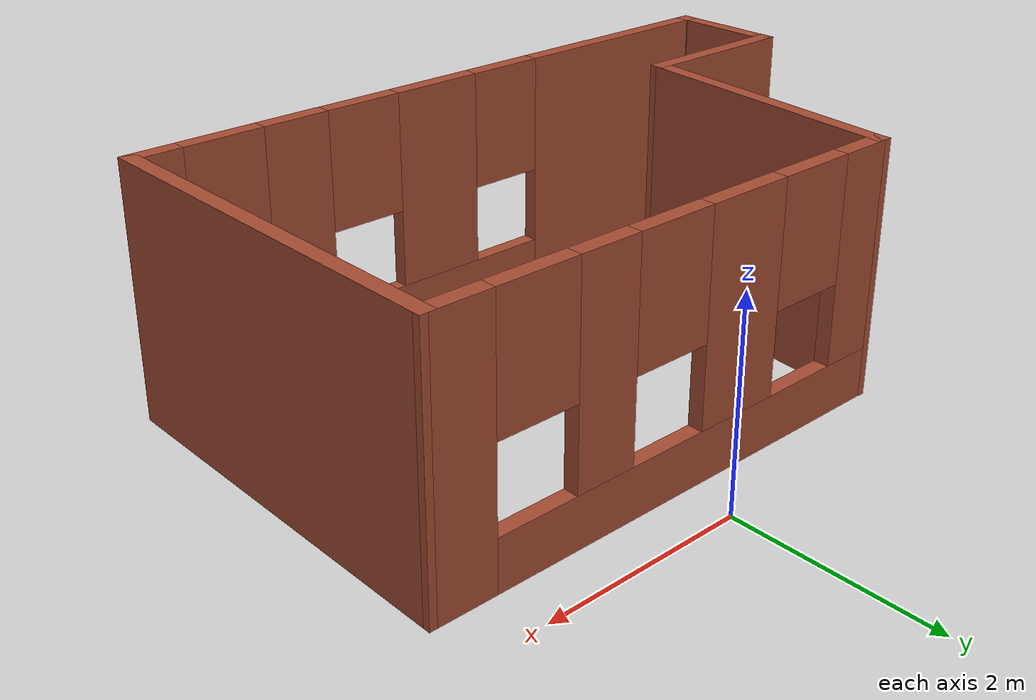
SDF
<?xml version='1.0'?>
<sdf version='1.7'>
  <model name='BrickBuilding'>
    <pose>-0.814927 -2.2475 0 0 -0 0</pose>
    <link name='Wall_0'>
      <collision name='Wall_0_Collision'>
        <geometry>
          <box>
            <size>1.75 0.15 2.5</size>
          </box>
        </geometry>
        <pose>0 0 1.25 0 -0 0</pose>
      </collision>
      <visual name='Wall_0_Visual'>
        <pose>0 0 1.25 0 -0 0</pose>
        <geometry>
          <box>
            <size>1.75 0.15 2.5</size>
          </box>
        </geometry>
        <material>
          <script>
            <uri>file://media/materials/scripts/gazebo.material</uri>
            <name>Gazebo/Bricks</name>
          </script>
          <ambient>1 1 1 1</ambient>
        </material>
        <meta>
          <layer>0</layer>
        </meta>
      </visual>
      <pose>-2.62507 -1.0725 0 0 -0 3.14159</pose>
    </link>
    <link name='Wall_1'>
      <pose>-3.42507 -1.6225 0 0 -0 -1.5708</pose>
      <visual name='Wall_1_Visual_0'>
        <pose>-0.5325 0 1.25 0 -0 0</pose>
        <geometry>
          <box>
            <size>0.185 0.15 2.5</size>
          </box>
        </geometry>
        <material>
          <script>
            <uri>file://media/materials/scripts/gazebo.material</uri>
            <name>Gazebo/Bricks</name>
          </script>
          <ambient>1 1 1 1</ambient>
        </material>
        <meta>
          <layer>0</layer>
        </meta>
      </visual>
      <collision name='Wall_1_Collision_0'>
        <geometry>
          <box>
            <size>0.185 0.15 2.5</size>
          </box>
        </geometry>
        <pose>-0.5325 0 1.25 0 -0 0</pose>
      </collision>
      <visual name='Wall_1_Visual_1'>
        <pose>0.5425 0 1.25 0 -0 0</pose>
        <geometry>
          <box>
            <size>0.165 0.15 2.5</size>
          </box>
        </geometry>
        <material>
          <script>
            <uri>file://media/materials/scripts/gazebo.material</uri>
            <name>Gazebo/Bricks</name>
          </script>
          <ambient>1 1 1 1</ambient>
        </material>
        <meta>
          <layer>0</layer>
        </meta>
      </visual>
      <collision name='Wall_1_Collision_1'>
        <geometry>
          <box>
            <size>0.165 0.15 2.5</size>
          </box>
        </geometry>
        <pose>0.5425 0 1.25 0 -0 0</pose>
      </collision>
      <visual name='Wall_1_Visual_2'>
        <pose>0.01 0 2.25 0 -0 0</pose>
        <geometry>
          <box>
            <size>0.9 0.15 0.5</size>
          </box>
        </geometry>
        <material>
          <script>
            <uri>file://media/materials/scripts/gazebo.material</uri>
            <name>Gazebo/Bricks</name>
          </script>
          <ambient>1 1 1 1</ambient>
        </material>
        <meta>
          <layer>0</layer>
        </meta>
      </visual>
      <collision name='Wall_1_Collision_2'>
        <geometry>
          <box>
            <size>0.9 0.15 0.5</size>
          </box>
        </geometry>
        <pose>0.01 0 2.25 0 -0 0</pose>
      </collision>
    </link>
    <link name='Wall_2'>
      <pose>-7.3e-05 -2.1725 0 0 -0 0</pose>
      <visual name='Wall_2_Visual_0'>
        <pose>-2.2775 0 1.25 0 -0 0</pose>
        <geometry>
          <box>
            <size>2.445 0.15 2.5</size>
          </box>
        </geometry>
        <material>
          <script>
            <uri>file://media/materials/scripts/gazebo.material</uri>
            <name>Gazebo/Bricks</name>
          </script>
          <ambient>1 1 1 1</ambient>
        </material>
        <meta>
          <layer>0</layer>
        </meta>
      </visual>
      <collision name='Wall_2_Collision_0'>
        <geometry>
          <box>
            <size>2.445 0.15 2.5</size>
          </box>
        </geometry>
        <pose>-2.2775 0 1.25 0 -0 0</pose>
      </collision>
      <visual name='Wall_2_Visual_1'>
        <pose>1.2225 0 0.25 0 -0 0</pose>
        <geometry>
          <box>
            <size>4.555 0.15 0.5</size>
          </box>
        </geometry>
        <material>
          <script>
            <uri>file://media/materials/scripts/gazebo.material</uri>
            <name>Gazebo/Bricks</name>
          </script>
          <ambient>1 1 1 1</ambient>
        </material>
        <meta>
          <layer>0</layer>
        </meta>
      </visual>
      <collision name='Wall_2_Collision_1'>
        <geometry>
          <box>
            <size>4.555 0.15 0.5</size>
          </box>
        </geometry>
        <pose>1.2225 0 0.25 0 -0 0</pose>
      </collision>
      <visual name='Wall_2_Visual_2'>
        <pose>0.22 0 1.5 0 -0 0</pose>
        <geometry>
          <box>
            <size>0.95 0.15 2</size>
          </box>
        </geometry>
        <material>
          <script>
            <uri>file://media/materials/scripts/gazebo.material</uri>
            <name>Gazebo/Bricks</name>
          </script>
          <ambient>1 1 1 1</ambient>
        </material>
        <meta>
          <layer>0</layer>
        </meta>
      </visual>
      <collision name='Wall_2_Collision_2'>
        <geometry>
          <box>
            <size>0.95 0.15 2</size>
          </box>
        </geometry>
        <pose>0.22 0 1.5 0 -0 0</pose>
      </collision>
      <visual name='Wall_2_Visual_3'>
        <pose>1.835 0 1.5 0 -0 0</pose>
        <geometry>
          <box>
            <size>0.68 0.15 2</size>
          </box>
        </geometry>
        <material>
          <script>
            <uri>file://media/materials/scripts/gazebo.material</uri>
            <name>Gazebo/Bricks</name>
          </script>
          <ambient>1 1 1 1</ambient>
        </material>
        <meta>
          <layer>0</layer>
        </meta>
      </visual>
      <collision name='Wall_2_Collision_3'>
        <geometry>
          <box>
            <size>0.68 0.15 2</size>
          </box>
        </geometry>
        <pose>1.835 0 1.5 0 -0 0</pose>
      </collision>
      <visual name='Wall_2_Visual_4'>
        <pose>3.2375 0 1.5 0 -0 0</pose>
        <geometry>
          <box>
            <size>0.525 0.15 2</size>
          </box>
        </geometry>
        <material>
          <script>
            <uri>file://media/materials/scripts/gazebo.material</uri>
            <name>Gazebo/Bricks</name>
          </script>
          <ambient>1 1 1 1</ambient>
        </material>
        <meta>
          <layer>0</layer>
        </meta>
      </visual>
      <collision name='Wall_2_Collision_4'>
        <geometry>
          <box>
            <size>0.525 0.15 2</size>
          </box>
        </geometry>
        <pose>3.2375 0 1.5 0 -0 0</pose>
      </collision>
      <visual name='Wall_2_Visual_5'>
        <pose>-0.655 0 1.9 0 -0 0</pose>
        <geometry>
          <box>
            <size>0.8 0.15 1.2</size>
          </box>
        </geometry>
        <material>
          <script>
            <uri>file://media/materials/scripts/gazebo.material</uri>
            <name>Gazebo/Bricks</name>
          </script>
          <ambient>1 1 1 1</ambient>
        </material>
        <meta>
          <layer>0</layer>
        </meta>
      </visual>
      <collision name='Wall_2_Collision_5'>
        <geometry>
          <box>
            <size>0.8 0.15 1.2</size>
          </box>
        </geometry>
        <pose>-0.655 0 1.9 0 -0 0</pose>
      </collision>
      <visual name='Wall_2_Visual_6'>
        <pose>1.095 0 1.9 0 -0 0</pose>
        <geometry>
          <box>
            <size>0.8 0.15 1.2</size>
          </box>
        </geometry>
        <material>
          <script>
            <uri>file://media/materials/scripts/gazebo.material</uri>
            <name>Gazebo/Bricks</name>
          </script>
          <ambient>1 1 1 1</ambient>
        </material>
        <meta>
          <layer>0</layer>
        </meta>
      </visual>
      <collision name='Wall_2_Collision_6'>
        <geometry>
          <box>
            <size>0.8 0.15 1.2</size>
          </box>
        </geometry>
        <pose>1.095 0 1.9 0 -0 0</pose>
      </collision>
      <visual name='Wall_2_Visual_7'>
        <pose>2.575 0 1.9 0 -0 0</pose>
        <geometry>
          <box>
            <size>0.8 0.15 1.2</size>
          </box>
        </geometry>
        <material>
          <script>
            <uri>file://media/materials/scripts/gazebo.material</uri>
            <name>Gazebo/Bricks</name>
          </script>
          <ambient>1 1 1 1</ambient>
        </material>
        <meta>
          <layer>0</layer>
        </meta>
      </visual>
      <collision name='Wall_2_Collision_7'>
        <geometry>
          <box>
            <size>0.8 0.15 1.2</size>
          </box>
        </geometry>
        <pose>2.575 0 1.9 0 -0 0</pose>
      </collision>
    </link>
    <link name='Wall_3'>
      <collision name='Wall_3_Collision'>
        <geometry>
          <box>
            <size>4 0.15 2.5</size>
          </box>
        </geometry>
        <pose>0 0 1.25 0 -0 0</pose>
      </collision>
      <visual name='Wall_3_Visual'>
        <pose>0 0 1.25 0 -0 0</pose>
        <geometry>
          <box>
            <size>4 0.15 2.5</size>
          </box>
        </geometry>
        <material>
          <script>
            <uri>file://media/materials/scripts/gazebo.material</uri>
            <name>Gazebo/Bricks</name>
          </script>
          <ambient>1 1 1 1</ambient>
        </material>
        <meta>
          <layer>0</layer>
        </meta>
      </visual>
      <pose>3.42493 -0.2475 0 0 -0 1.5708</pose>
    </link>
    <link name='Wall_4'>
      <pose>0.929927 1.6825 0 0 -0 3.13959</pose>
      <visual name='Wall_4_Visual_0'>
        <pose>-2.24747 0 1.25 0 -0 0</pose>
        <geometry>
          <box>
            <size>0.645053 0.15 2.5</size>
          </box>
        </geometry>
        <material>
          <script>
            <uri>file://media/materials/scripts/gazebo.material</uri>
            <name>Gazebo/Bricks</name>
          </script>
          <ambient>1 1 1 1</ambient>
        </material>
        <meta>
          <layer>0</layer>
        </meta>
      </visual>
      <collision name='Wall_4_Collision_0'>
        <geometry>
          <box>
            <size>0.645053 0.15 2.5</size>
          </box>
        </geometry>
        <pose>-2.24747 0 1.25 0 -0 0</pose>
      </collision>
      <visual name='Wall_4_Visual_1'>
        <pose>0.322527 0 0.25 0 -0 0</pose>
        <geometry>
          <box>
            <size>4.49495 0.15 0.5</size>
          </box>
        </geometry>
        <material>
          <script>
            <uri>file://media/materials/scripts/gazebo.material</uri>
            <name>Gazebo/Bricks</name>
          </script>
          <ambient>1 1 1 1</ambient>
        </material>
        <meta>
          <layer>0</layer>
        </meta>
      </visual>
      <collision name='Wall_4_Collision_1'>
        <geometry>
          <box>
            <size>4.49495 0.15 0.5</size>
          </box>
        </geometry>
        <pose>0.322527 0 0.25 0 -0 0</pose>
      </collision>
      <visual name='Wall_4_Visual_2'>
        <pose>-0.819918 0 1.5 0 -0 0</pose>
        <geometry>
          <box>
            <size>0.610057 0.15 2</size>
          </box>
        </geometry>
        <material>
          <script>
            <uri>file://media/materials/scripts/gazebo.material</uri>
            <name>Gazebo/Bricks</name>
          </script>
          <ambient>1 1 1 1</ambient>
        </material>
        <meta>
          <layer>0</layer>
        </meta>
      </visual>
      <collision name='Wall_4_Collision_2'>
        <geometry>
          <box>
            <size>0.610057 0.15 2</size>
          </box>
        </geometry>
        <pose>-0.819918 0 1.5 0 -0 0</pose>
      </collision>
      <visual name='Wall_4_Visual_3'>
        <pose>0.725089 0 1.5 0 -0 0</pose>
        <geometry>
          <box>
            <size>0.879957 0.15 2</size>
          </box>
        </geometry>
        <material>
          <script>
            <uri>file://media/materials/scripts/gazebo.material</uri>
            <name>Gazebo/Bricks</name>
          </script>
          <ambient>1 1 1 1</ambient>
        </material>
        <meta>
          <layer>0</layer>
        </meta>
      </visual>
      <collision name='Wall_4_Collision_3'>
        <geometry>
          <box>
            <size>0.879957 0.15 2</size>
          </box>
        </geometry>
        <pose>0.725089 0 1.5 0 -0 0</pose>
      </collision>
      <visual name='Wall_4_Visual_4'>
        <pose>2.26753 0 1.5 0 -0 0</pose>
        <geometry>
          <box>
            <size>0.604933 0.15 2</size>
          </box>
        </geometry>
        <material>
          <script>
            <uri>file://media/materials/scripts/gazebo.material</uri>
            <name>Gazebo/Bricks</name>
          </script>
          <ambient>1 1 1 1</ambient>
        </material>
        <meta>
          <layer>0</layer>
        </meta>
      </visual>
      <collision name='Wall_4_Collision_4'>
        <geometry>
          <box>
            <size>0.604933 0.15 2</size>
          </box>
        </geometry>
        <pose>2.26753 0 1.5 0 -0 0</pose>
      </collision>
      <visual name='Wall_4_Visual_5'>
        <pose>-1.52495 0 1.9 0 -0 0</pose>
        <geometry>
          <box>
            <size>0.8 0.15 1.2</size>
          </box>
        </geometry>
        <material>
          <script>
            <uri>file://media/materials/scripts/gazebo.material</uri>
            <name>Gazebo/Bricks</name>
          </script>
          <ambient>1 1 1 1</ambient>
        </material>
        <meta>
          <layer>0</layer>
        </meta>
      </visual>
      <collision name='Wall_4_Collision_5'>
        <geometry>
          <box>
            <size>0.8 0.15 1.2</size>
          </box>
        </geometry>
        <pose>-1.52495 0 1.9 0 -0 0</pose>
      </collision>
      <visual name='Wall_4_Visual_6'>
        <pose>-0.11489 0 1.9 0 -0 0</pose>
        <geometry>
          <box>
            <size>0.8 0.15 1.2</size>
          </box>
        </geometry>
        <material>
          <script>
            <uri>file://media/materials/scripts/gazebo.material</uri>
            <name>Gazebo/Bricks</name>
          </script>
          <ambient>1 1 1 1</ambient>
        </material>
        <meta>
          <layer>0</layer>
        </meta>
      </visual>
      <collision name='Wall_4_Collision_6'>
        <geometry>
          <box>
            <size>0.8 0.15 1.2</size>
          </box>
        </geometry>
        <pose>-0.11489 0 1.9 0 -0 0</pose>
      </collision>
      <visual name='Wall_4_Visual_7'>
        <pose>1.56507 0 1.9 0 -0 0</pose>
        <geometry>
          <box>
            <size>0.8 0.15 1.2</size>
          </box>
        </geometry>
        <material>
          <script>
            <uri>file://media/materials/scripts/gazebo.material</uri>
            <name>Gazebo/Bricks</name>
          </script>
          <ambient>1 1 1 1</ambient>
        </material>
        <meta>
          <layer>0</layer>
        </meta>
      </visual>
      <collision name='Wall_4_Collision_7'>
        <geometry>
          <box>
            <size>0.8 0.15 1.2</size>
          </box>
        </geometry>
        <pose>1.56507 0 1.9 0 -0 0</pose>
      </collision>
    </link>
    <link name='Wall_7'>
      <collision name='Wall_7_Collision'>
        <geometry>
          <box>
            <size>2.92222 0.15 2.5</size>
          </box>
        </geometry>
        <pose>0 0 1.25 0 -0 0</pose>
      </collision>
      <visual name='Wall_7_Visual'>
        <pose>0 0 1.25 0 -0 0</pose>
        <geometry>
          <box>
            <size>2.92222 0.15 2.5</size>
          </box>
        </geometry>
        <material>
          <script>
            <uri>file://media/materials/scripts/gazebo.material</uri>
            <name>Gazebo/Bricks</name>
          </script>
          <ambient>1 1 1 1</ambient>
        </material>
        <meta>
          <layer>0</layer>
        </meta>
      </visual>
      <pose>-1.69507 0.3075 0 0 -0 -1.66472</pose>
    </link>
    <static>1</static>
  </model>
</sdf>
